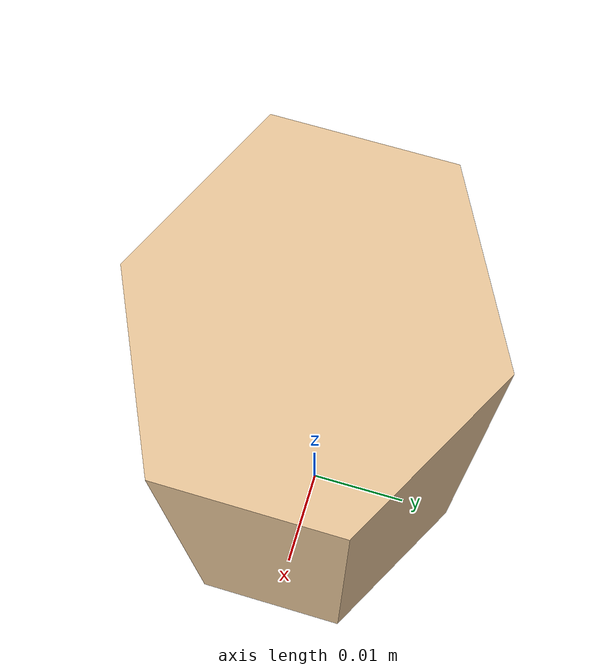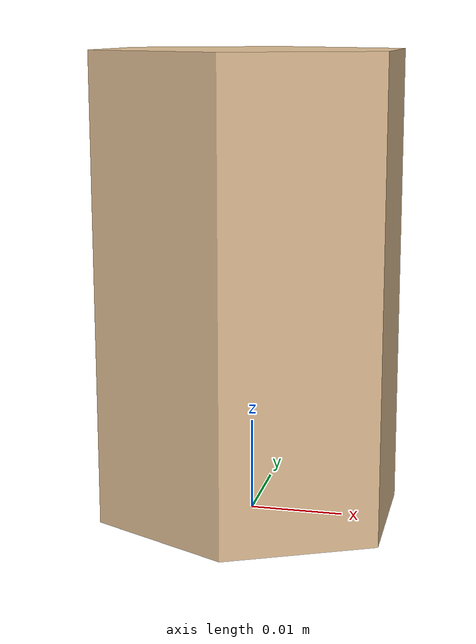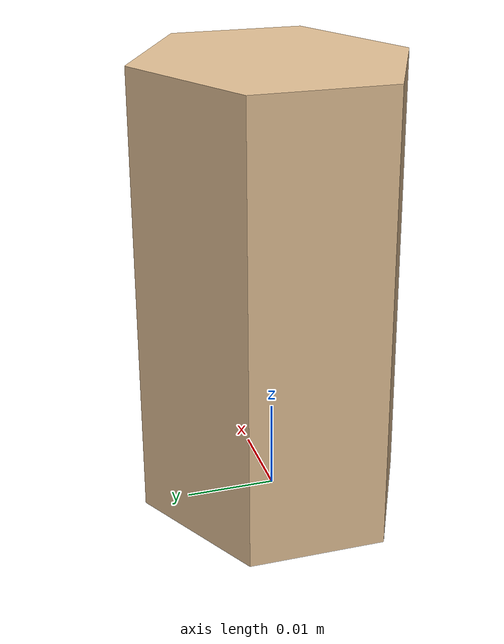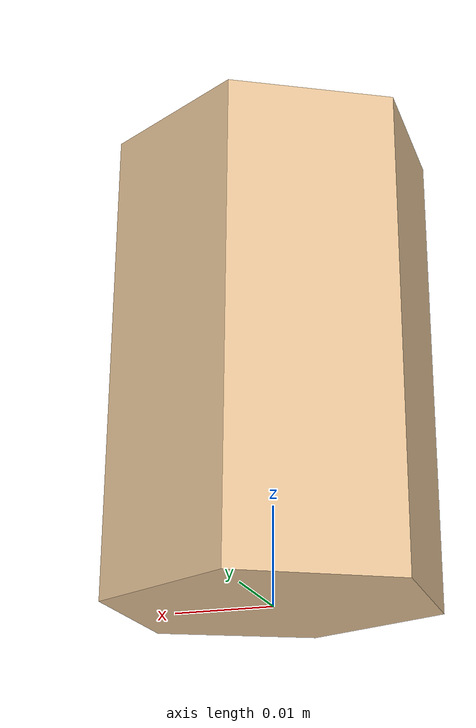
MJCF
<mujoco model="peg">
  <default>
    <default class="visual">
      <geom group="2" type="mesh" contype="0" conaffinity="0"/>
    </default>
    <default class="collision">
      <geom group="3" type="mesh"/>
    </default>
  </default>
  <asset>
    <material name="color_14860437" specular="0.5" shininess="0.5" rgba="0.8862745098039215 0.7529411764705882 0.5843137254901961 1"/>
    <mesh file="peg.obj"/>
  </asset>
  <worldbody>
    <body name="peg">
      <geom material="color_14860437" mesh="peg" class="visual"/>
      <geom mesh="peg" class="collision"/>
    </body>
  </worldbody>
</mujoco>
